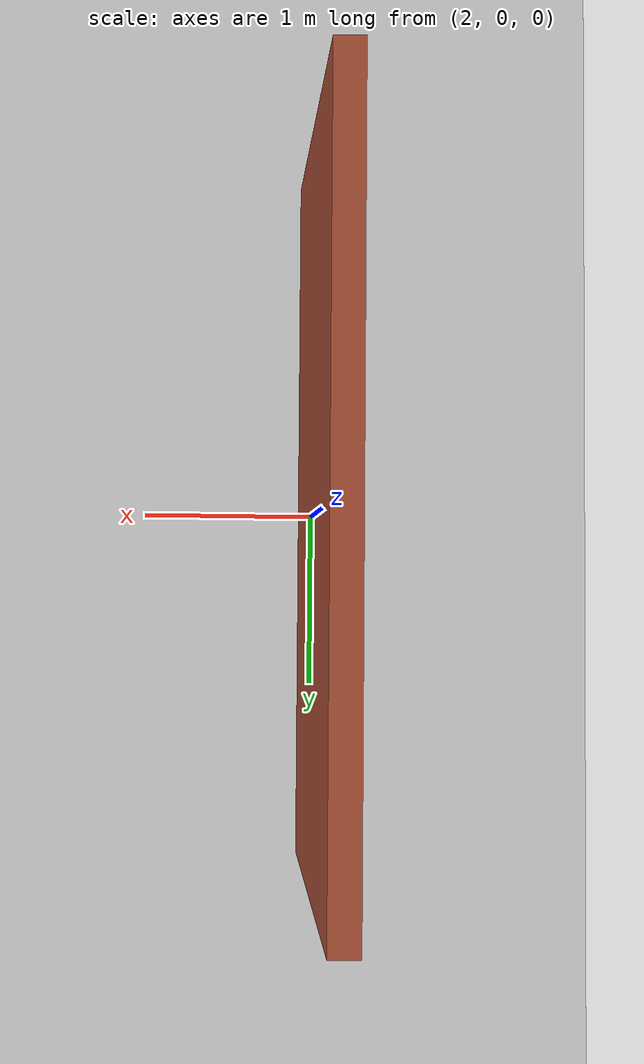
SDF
<?xml version="1.0" ?>
<sdf version="1.5">
  <world name="default">
    <!-- A global light source -->
    <include>
      <uri>model://sun</uri>
    </include>
    <!-- A ground plane -->
    <include>
      <uri>model://ground_plane</uri>
    </include>
    <include>
      <uri>model://wall_high_fric</uri>
      <pose frame=''>2 0 0 0 0 1.5708</pose>
    </include>
    <physics name='default_physics' default='0' type='ode'>
      <gravity>0 0 -9.81</gravity>
      <ode>
        <solver>
          <type>quick</type>
          <iters>10</iters>
          <sor>1.3</sor>
          <use_dynamic_moi_rescaling>0</use_dynamic_moi_rescaling>
        </solver>
        <constraints>
          <cfm>0</cfm>
          <erp>0.2</erp>
          <contact_max_correcting_vel>100</contact_max_correcting_vel>
          <contact_surface_layer>0.001</contact_surface_layer>
        </constraints>
      </ode>
      <max_step_size>0.004</max_step_size>
      <real_time_factor>1</real_time_factor>
      <real_time_update_rate>250</real_time_update_rate>
      <magnetic_field>6.0e-6 2.3e-5 -4.2e-5</magnetic_field>
    </physics>
    <scene>
      <ambient>0.7 0.7 0.7 1</ambient>
      <background>1 1 1 1</background>
      <shadows>0</shadows>
    </scene>
    <gui fullscreen='0'>
      <camera name='user_camera'>
        <pose>-2.7575 -3.07613 2.44025 0 0.275643 0.628191</pose>
        <view_controller>orbit</view_controller>
        <projection_type>perspective</projection_type>
      </camera>
    </gui>
  </world>
</sdf>

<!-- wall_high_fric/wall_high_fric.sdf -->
<sdf version='1.6'>
  <model name='wall_high_fric'>
    <pose frame=''>-0.015 2.02 0 0 -0 0</pose>
    <link name='Wall_0'>
      <collision name='Wall_0_Collision'>
        <geometry>
          <box>
            <size>4 0.15 2.5</size>
          </box>
        </geometry>
        <pose frame=''>0 0 1.25 0 -0 0</pose>
        <surface>
          <friction>
            <ode>
              <mu> 0.8 </mu>
              <mu2> 0.8 </mu2>
            </ode>
          </friction>
        </surface>
      </collision>
      <visual name='Wall_0_Visual'>
        <pose frame=''>0 0 1.25 0 -0 0</pose>
        <geometry>
          <box>
            <size>4 0.15 2.5</size>
          </box>
        </geometry>
        <material>
          <script>
            <uri>file://media/materials/scripts/gazebo.material</uri>
            <name>Gazebo/Bricks</name>
          </script>
          <ambient>1 1 1 1</ambient>
        </material>
        <meta>
          <layer>0</layer>
        </meta>
      </visual>
      <pose frame=''>0 0 0 0 -0 0</pose>
    </link>
    <static>1</static>
  </model>
</sdf>
